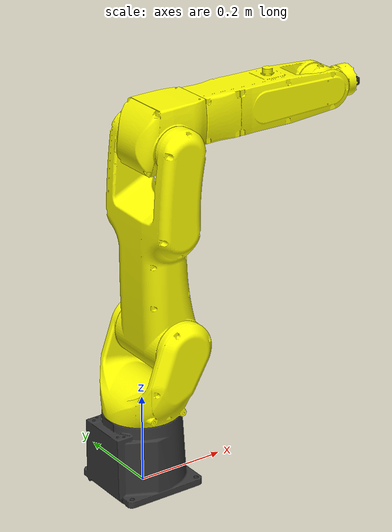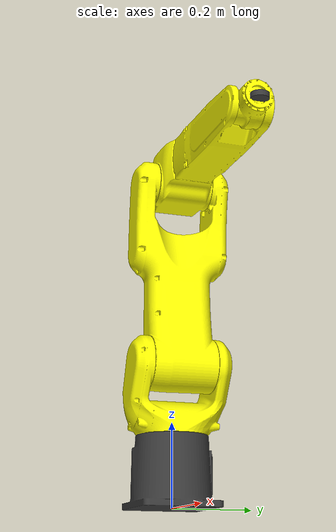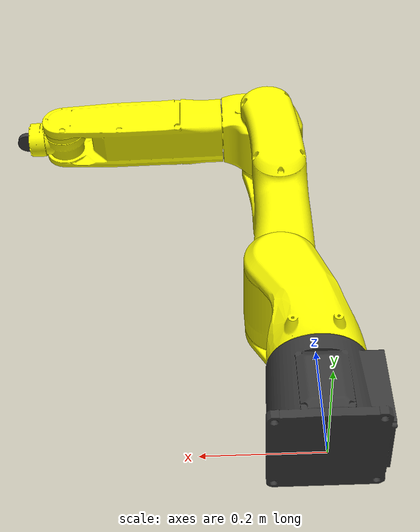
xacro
<?xml version="1.0"?>
<robot name="fanuc_lrmate200id7l" xmlns:xacro="http://ros.org/wiki/xacro">

  <xacro:include filename="$(find fanuc_lrmate200id_support)/urdf/lrmate200id7l_macro.xacro"/>

  <link name="world"/>

  <xacro:fanuc_lrmate200id7l
  prefix=""
  parent="world">
  <origin xyz="0 0 0" rpy="0 0 0"/>
  </xacro:fanuc_lrmate200id7l>
</robot>

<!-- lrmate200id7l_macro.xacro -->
<robot xmlns:xacro="http://ros.org/wiki/xacro">
  <xacro:include filename="$(find fanuc_resources)/urdf/common_materials.xacro"/>

  <xacro:macro name="fanuc_lrmate200id7l" params="prefix parent *origin">
    <!-- links - main serial chain -->
    <link name="${prefix}base_link">
      <visual>
        <origin xyz="0 0 0" rpy="0 0 0"/>
        <geometry>
          <mesh filename="package://fanuc_lrmate200id_support/meshes/lrmate200id/visual/base_link.stl"/>
        </geometry>
        <xacro:material_fanuc_gray28 />
      </visual>
      <collision>
        <origin xyz="0 0 0" rpy="0 0 0"/>
        <geometry>
          <mesh filename="package://fanuc_lrmate200id_support/meshes/lrmate200id/collision/base_link.stl"/>
        </geometry>
      </collision>
    </link>
    <link name="${prefix}link_1">
      <visual>
        <origin xyz="0 0 0" rpy="0 0 0"/>
        <geometry>
          <mesh filename="package://fanuc_lrmate200id_support/meshes/lrmate200id/visual/link_1.stl"/>
        </geometry>
        <xacro:material_fanuc_yellow />
      </visual>
      <collision>
        <origin xyz="0 0 0" rpy="0 0 0"/>
        <geometry>
          <mesh filename="package://fanuc_lrmate200id_support/meshes/lrmate200id/collision/link_1.stl"/>
        </geometry>
      </collision>
    </link>
    <link name="${prefix}link_2">
      <visual>
        <origin xyz="0 0 0" rpy="0 0 0"/>
        <geometry>
          <mesh filename="package://fanuc_lrmate200id_support/meshes/lrmate200id7l/visual/link_2.stl"/>
        </geometry>
        <xacro:material_fanuc_yellow />
      </visual>
      <collision>
        <origin xyz="0 0 0" rpy="0 0 0"/>
        <geometry>
          <mesh filename="package://fanuc_lrmate200id_support/meshes/lrmate200id7l/collision/link_2.stl"/>
        </geometry>
      </collision>
    </link>
    <link name="${prefix}link_3">
      <visual>
        <origin xyz="0 0 0" rpy="0 0 0"/>
        <geometry>
          <mesh filename="package://fanuc_lrmate200id_support/meshes/lrmate200id/visual/link_3.stl"/>
        </geometry>
        <xacro:material_fanuc_yellow />
      </visual>
      <collision>
        <origin xyz="0 0 0" rpy="0 0 0"/>
        <geometry>
          <mesh filename="package://fanuc_lrmate200id_support/meshes/lrmate200id/collision/link_3.stl"/>
        </geometry>
      </collision>
    </link>
    <link name="${prefix}link_4">
      <visual>
        <origin xyz="0 0 0" rpy="0 0 0"/>
        <geometry>
          <mesh filename="package://fanuc_lrmate200id_support/meshes/lrmate200id7l/visual/link_4.stl"/>
        </geometry>
        <xacro:material_fanuc_yellow />
      </visual>
      <collision>
        <origin xyz="0 0 0" rpy="0 0 0"/>
        <geometry>
          <mesh filename="package://fanuc_lrmate200id_support/meshes/lrmate200id7l/collision/link_4.stl"/>
        </geometry>
      </collision>
    </link>
    <link name="${prefix}link_5">
      <visual>
        <origin xyz="0 0 0" rpy="0 0 0"/>
        <geometry>
          <mesh filename="package://fanuc_lrmate200id_support/meshes/lrmate200id/visual/link_5.stl"/>
        </geometry>
        <xacro:material_fanuc_yellow />
      </visual>
      <collision>
        <origin xyz="0 0 0" rpy="0 0 0"/>
        <geometry>
          <mesh filename="package://fanuc_lrmate200id_support/meshes/lrmate200id/collision/link_5.stl"/>
        </geometry>
      </collision>
    </link>
    <link name="${prefix}link_6">
      <visual>
        <origin xyz="0 0 0" rpy="0 0 0"/>
        <geometry>
          <mesh filename="package://fanuc_lrmate200id_support/meshes/lrmate200id/visual/link_6.stl"/>
        </geometry>
        <xacro:material_fanuc_black />
      </visual>
      <collision>
        <origin xyz="0 0 0" rpy="0 0 0"/>
        <geometry>
          <mesh filename="package://fanuc_lrmate200id_support/meshes/lrmate200id/collision/link_6.stl"/>
        </geometry>
      </collision>
    </link>

    <!-- joints - main serial chain -->
    <joint name="${prefix}joint_1" type="revolute">
      <origin xyz="0 0 0.330" rpy="0 0 0" />
      <parent link="${prefix}base_link" />
      <child link="${prefix}link_1" />
      <axis xyz="0 0 1" />
      <limit effort="0" lower="${radians(-170)}" upper="${radians(170)}" velocity="${radians(370)}" />
    </joint>
    <joint name="${prefix}joint_2" type="revolute">
      <origin xyz="0.050 0 0" rpy="0 0 0"/>
      <parent link="${prefix}link_1" />
      <child link="${prefix}link_2" />
      <axis xyz="0 1 0" />
      <limit effort="0" lower="${radians(-100)}" upper="${radians(145)}" velocity="${radians(310)}" />
    </joint>
    <joint name="${prefix}joint_3" type="revolute">
      <origin xyz="0 0 0.440" rpy="0 0 0"/>
      <parent link="${prefix}link_2" />
      <child link="${prefix}link_3" />
      <axis xyz="0 -1 0" />
      <limit effort="0" lower="${radians(-70)}" upper="${radians(213)}" velocity="${radians(410)}" />
    </joint>
    <joint name="${prefix}joint_4" type="revolute">
      <origin xyz="0 0 0.035" rpy="0 0 0"/>
      <parent link="${prefix}link_3"/>
      <child link="${prefix}link_4"/>
      <axis xyz="-1 0 0"/>
      <limit effort="0" lower="${radians(-190)}" upper="${radians(190)}" velocity="${radians(550)}" />
    </joint>
    <joint name="${prefix}joint_5" type="revolute">
      <origin xyz="0.420 0 0" rpy="0 0 0"/>
      <parent link="${prefix}link_4"/>
      <child link="${prefix}link_5"/>
      <axis xyz="0 -1 0"/>
      <limit effort="0" lower="${radians(-125)}" upper="${radians(125)}" velocity="${radians(545)}" />
    </joint>
    <joint name="${prefix}joint_6" type="revolute">
      <origin xyz="0.080 0 0" rpy="0 0 0"/>
      <parent link="${prefix}link_5"/>
      <child link="${prefix}link_6"/>
      <axis xyz="-1 0 0"/>
      <limit effort="0" lower="${radians(-360)}" upper="${radians(360)}" velocity="${radians(1000)}" />
    </joint>

    <!-- parent_to_base_link fixes base_link to the environment -->
    <joint name="${prefix}parent_to_base_link" type="fixed">
      <xacro:insert_block name="origin" />
      <parent link="${parent}" />
      <child link="${prefix}base_link" />
    </joint>

    <!-- ROS-Industrial 'base' frame - base_link to Fanuc World Coordinates transform -->
    <link name="${prefix}base" />
    <joint name="${prefix}base_link-base" type="fixed">
      <origin xyz="0 0 0.330" rpy="0 0 0"/>
      <parent link="${prefix}base_link"/>
      <child link="${prefix}base"/>
    </joint>

    <!-- ROS-Industrial 'flange' frame - attachment point for EEF models -->
    <link name="${prefix}flange" />
    <joint name="${prefix}link_6-flange" type="fixed">
      <origin xyz="0 0 0" rpy="0 0 0" />
      <parent link="${prefix}link_6" />
      <child link="${prefix}flange" />
    </joint>

    <!-- ROS-Industrial 'tool0' frame - all-zeros tool frame -->
    <link name="${prefix}tool0" />
    <joint name="${prefix}flange-tool0" type="fixed">
      <origin xyz="0 0 0" rpy="${pi} ${-pi/2.0} 0" />
      <parent link="${prefix}flange" />
      <child link="${prefix}tool0" />
    </joint>
  </xacro:macro>
</robot>
